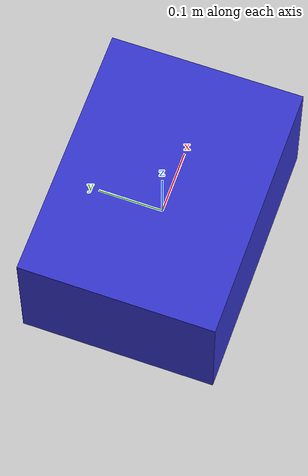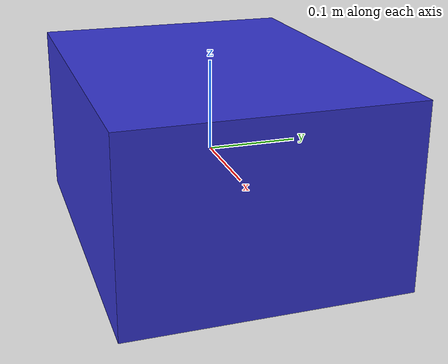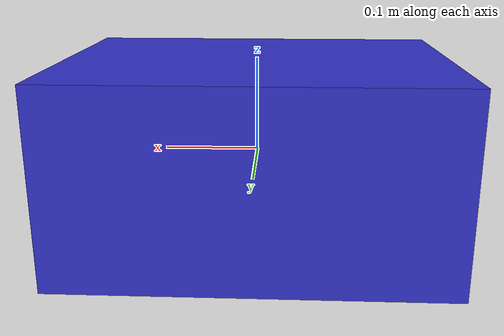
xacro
<?xml version="1.0"?>
<robot xmlns:xacro="http://www.ros.org/wiki/xacro" name="boxyGo">
  <!-- Parametry -->
  <xacro:property name="length"  value="0.4"/>
  <xacro:property name="width"   value="0.3"/>
  <xacro:property name="height"  value="0.2"/>
  <xacro:property name="wheel_radius" value="0.05"/>
  <xacro:property name="wheel_separation" value="0.2"/>

  <!-- Korpus -->
  <link name="base_link">
    <inertial>
      <mass value="5.0"/>
      <inertia ixx="0.1" ixy="0.0" ixz="0.0" iyy="0.1" iyz="0.0" izz="0.1"/>
    </inertial>
    <visual>
      <geometry><box size="${length} ${width} ${height}"/></geometry>
      <material><color rgba="0.2 0.2 0.8 1"/></material>
    </visual>
    <collision>
      <geometry><box size="${length} ${width} ${height}"/></geometry>
    </collision>
  </link>

  <!-- Koła napędowe -->
  <link name="wheel_left"/>
  <joint name="wheel_left_joint" type="continuous">
    <parent link="base_link"/>
    <child  link="wheel_left"/>
    <origin xyz="0  ${width/2} 0" rpy="0 0 0"/>
    <axis  xyz="0 1 0"/>
  </joint>

  <link name="wheel_right"/>
  <joint name="wheel_right_joint" type="continuous">
    <parent link="base_link"/>
    <child  link="wheel_right"/>
    <origin xyz="0 -${width/2} 0" rpy="0 0 0"/>
    <axis  xyz="0 1 0"/>
  </joint>

  <!-- LIDAR 2D -->
  <link name="lidar_link"/>
  <joint name="lidar_joint" type="fixed">
    <parent link="base_link"/>
    <child  link="lidar_link"/>
    <origin xyz="0 0 ${height/2}" rpy="0 0 0"/>
  </joint>
  <gazebo>
    <plugin name="gazebo_ros_laser" filename="libgazebo_ros_laser.so">
      <ros>
        <namespace>/</namespace>
        <argument>scan:=/scan</argument>
      </ros>
      <update_rate>10.0</update_rate>
      <ray>
        <scan>
          <horizontal>
            <samples>36</samples>
            <min_angle>-1.57</min_angle>
            <max_angle>1.57</max_angle>
          </horizontal>
        </scan>
        <range>
          <min>0.1</min>
          <max>5.0</max>
        </range>
      </ray>
    </plugin>
  </gazebo>

  <!-- Opcjonalnie: IMU, kamera itp. -->
</robot>
